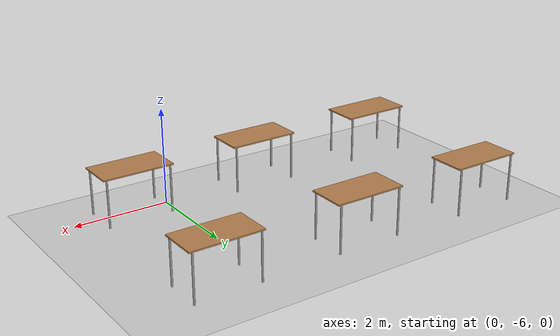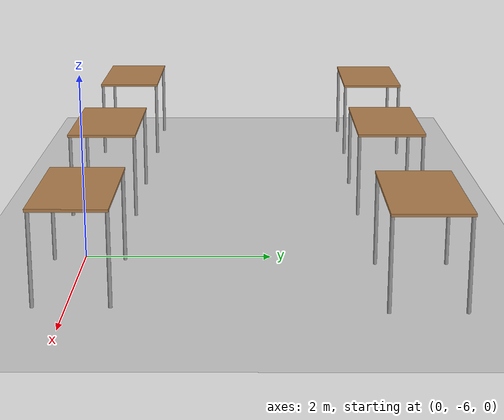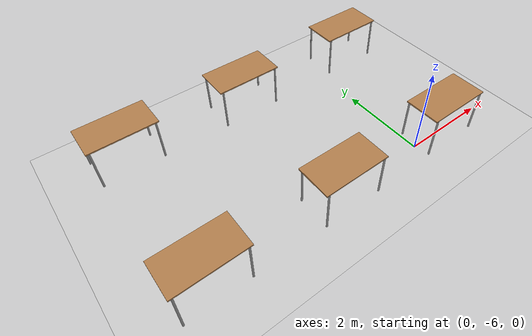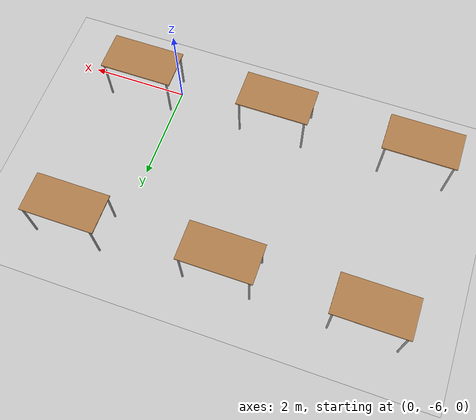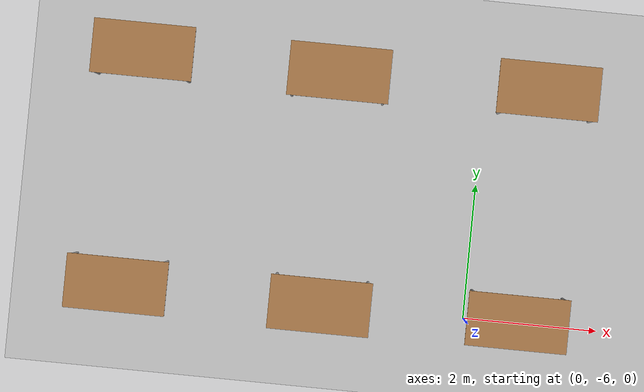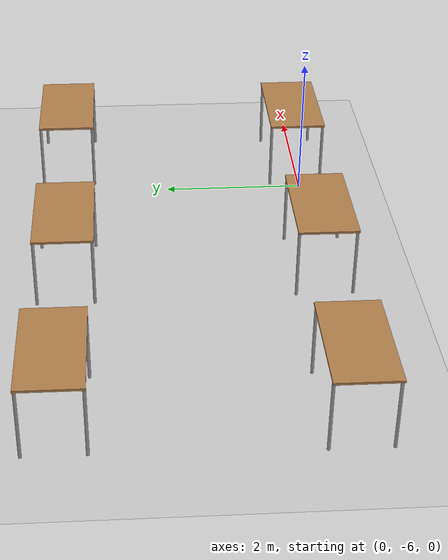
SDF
<sdf version="1.7">
 <world name="default">
  <model name="ground_plane">
   <static>1</static>
   <link name="link">
    <collision name="collision">
     <geometry><plane><normal>0 0 1</normal><size>100 100</size></plane></geometry>
     <surface>
      <contact><collide_bitmask>65535</collide_bitmask></contact>
      <friction><ode><mu>100</mu><mu2>50</mu2></ode></friction>
     </surface>
    </collision>
    <visual name="visual">
     <cast_shadows>0</cast_shadows>
     <geometry><plane><normal>0 0 1</normal><size>100 100</size></plane></geometry>
     <material>
      <script><uri>file://media/materials/scripts/gazebo.material</uri><name>Gazebo/Grey</name></script>
     </material>
    </visual>
   </link>
  </model>
  <model name="table_0">
   <static>1</static>
   <link name="link">
    <collision name="surface">
     <pose>0 0 1 0 -0 0</pose>
     <geometry><box><size>1.5 0.8 0.03</size></box></geometry>
     <surface><friction><ode><mu>0.6</mu><mu2>0.6</mu2></ode></friction></surface>
    </collision>
    <visual name="visual1">
     <pose>0 0 1 0 -0 0</pose>
     <geometry><box><size>1.5 0.8 0.03</size></box></geometry>
     <material>
      <script><uri>file://media/materials/scripts/gazebo.material</uri><name>Gazebo/Wood</name></script>
     </material>
    </visual>
    <collision name="front_left_leg">
     <pose>0.68 0.38 0.5 0 -0 0</pose>
     <geometry><cylinder><radius>0.02</radius><length>1</length></cylinder></geometry>
    </collision>
    <visual name="front_left_leg">
     <pose>0.68 0.38 0.5 0 -0 0</pose>
     <geometry><cylinder><radius>0.02</radius><length>1</length></cylinder></geometry>
     <material>
      <script><uri>file://media/materials/scripts/gazebo.material</uri><name>Gazebo/Grey</name></script>
     </material>
    </visual>
    <collision name="front_right_leg">
     <pose>0.68 -0.38 0.5 0 -0 0</pose>
     <geometry><cylinder><radius>0.02</radius><length>1</length></cylinder></geometry>
    </collision>
    <visual name="front_right_leg">
     <pose>0.68 -0.38 0.5 0 -0 0</pose>
     <geometry><cylinder><radius>0.02</radius><length>1</length></cylinder></geometry>
     <material>
      <script><uri>file://media/materials/scripts/gazebo.material</uri><name>Gazebo/Grey</name></script>
     </material>
    </visual>
    <collision name="back_right_leg">
     <pose>-0.68 -0.38 0.5 0 -0 0</pose>
     <geometry><cylinder><radius>0.02</radius><length>1</length></cylinder></geometry>
    </collision>
    <visual name="back_right_leg">
     <pose>-0.68 -0.38 0.5 0 -0 0</pose>
     <geometry><cylinder><radius>0.02</radius><length>1</length></cylinder></geometry>
     <material>
      <script><uri>file://media/materials/scripts/gazebo.material</uri><name>Gazebo/Grey</name></script>
     </material>
    </visual>
    <collision name="back_left_leg">
     <pose>-0.68 0.38 0.5 0 -0 0</pose>
     <geometry><cylinder><radius>0.02</radius><length>1</length></cylinder></geometry>
    </collision>
    <visual name="back_left_leg">
     <pose>-0.68 0.38 0.5 0 -0 0</pose>
     <geometry><cylinder><radius>0.02</radius><length>1</length></cylinder></geometry>
     <material>
      <script><uri>file://media/materials/scripts/gazebo.material</uri><name>Gazebo/Grey</name></script>
     </material>
    </visual>
   </link>
   <pose>0.898618 -2.51006 0 0 -0 0</pose>
  </model>
  <model name="table_3">
   <static>1</static>
   <link name="link">
    <collision name="surface">
     <pose>0 0 1 0 -0 0</pose>
     <geometry><box><size>1.5 0.8 0.03</size></box></geometry>
     <surface><friction><ode><mu>0.6</mu><mu2>0.6</mu2></ode></friction></surface>
    </collision>
    <visual name="visual1">
     <pose>0 0 1 0 -0 0</pose>
     <geometry><box><size>1.5 0.8 0.03</size></box></geometry>
     <material>
      <script><uri>file://media/materials/scripts/gazebo.material</uri><name>Gazebo/Wood</name></script>
     </material>
    </visual>
    <collision name="front_left_leg">
     <pose>0.68 0.38 0.5 0 -0 0</pose>
     <geometry><cylinder><radius>0.02</radius><length>1</length></cylinder></geometry>
    </collision>
    <visual name="front_left_leg">
     <pose>0.68 0.38 0.5 0 -0 0</pose>
     <geometry><cylinder><radius>0.02</radius><length>1</length></cylinder></geometry>
     <material>
      <script><uri>file://media/materials/scripts/gazebo.material</uri><name>Gazebo/Grey</name></script>
     </material>
    </visual>
    <collision name="front_right_leg">
     <pose>0.68 -0.38 0.5 0 -0 0</pose>
     <geometry><cylinder><radius>0.02</radius><length>1</length></cylinder></geometry>
    </collision>
    <visual name="front_right_leg">
     <pose>0.68 -0.38 0.5 0 -0 0</pose>
     <geometry><cylinder><radius>0.02</radius><length>1</length></cylinder></geometry>
     <material>
      <script><uri>file://media/materials/scripts/gazebo.material</uri><name>Gazebo/Grey</name></script>
     </material>
    </visual>
    <collision name="back_right_leg">
     <pose>-0.68 -0.38 0.5 0 -0 0</pose>
     <geometry><cylinder><radius>0.02</radius><length>1</length></cylinder></geometry>
    </collision>
    <visual name="back_right_leg">
     <pose>-0.68 -0.38 0.5 0 -0 0</pose>
     <geometry><cylinder><radius>0.02</radius><length>1</length></cylinder></geometry>
     <material>
      <script><uri>file://media/materials/scripts/gazebo.material</uri><name>Gazebo/Grey</name></script>
     </material>
    </visual>
    <collision name="back_left_leg">
     <pose>-0.68 0.38 0.5 0 -0 0</pose>
     <geometry><cylinder><radius>0.02</radius><length>1</length></cylinder></geometry>
    </collision>
    <visual name="back_left_leg">
     <pose>-0.68 0.38 0.5 0 -0 0</pose>
     <geometry><cylinder><radius>0.02</radius><length>1</length></cylinder></geometry>
     <material>
      <script><uri>file://media/materials/scripts/gazebo.material</uri><name>Gazebo/Grey</name></script>
     </material>
    </visual>
   </link>
   <pose>-2.18755 -2.54718 0 0 -0 0</pose>
  </model>
  <model name="table_4">
   <static>1</static>
   <link name="link">
    <collision name="surface">
     <pose>0 0 1 0 -0 0</pose>
     <geometry><box><size>1.5 0.8 0.03</size></box></geometry>
     <surface><friction><ode><mu>0.6</mu><mu2>0.6</mu2></ode></friction></surface>
    </collision>
    <visual name="visual1">
     <pose>0 0 1 0 -0 0</pose>
     <geometry><box><size>1.5 0.8 0.03</size></box></geometry>
     <material>
      <script><uri>file://media/materials/scripts/gazebo.material</uri><name>Gazebo/Wood</name></script>
     </material>
    </visual>
    <collision name="front_left_leg">
     <pose>0.68 0.38 0.5 0 -0 0</pose>
     <geometry><cylinder><radius>0.02</radius><length>1</length></cylinder></geometry>
    </collision>
    <visual name="front_left_leg">
     <pose>0.68 0.38 0.5 0 -0 0</pose>
     <geometry><cylinder><radius>0.02</radius><length>1</length></cylinder></geometry>
     <material>
      <script><uri>file://media/materials/scripts/gazebo.material</uri><name>Gazebo/Grey</name></script>
     </material>
    </visual>
    <collision name="front_right_leg">
     <pose>0.68 -0.38 0.5 0 -0 0</pose>
     <geometry><cylinder><radius>0.02</radius><length>1</length></cylinder></geometry>
    </collision>
    <visual name="front_right_leg">
     <pose>0.68 -0.38 0.5 0 -0 0</pose>
     <geometry><cylinder><radius>0.02</radius><length>1</length></cylinder></geometry>
     <material>
      <script><uri>file://media/materials/scripts/gazebo.material</uri><name>Gazebo/Grey</name></script>
     </material>
    </visual>
    <collision name="back_right_leg">
     <pose>-0.68 -0.38 0.5 0 -0 0</pose>
     <geometry><cylinder><radius>0.02</radius><length>1</length></cylinder></geometry>
    </collision>
    <visual name="back_right_leg">
     <pose>-0.68 -0.38 0.5 0 -0 0</pose>
     <geometry><cylinder><radius>0.02</radius><length>1</length></cylinder></geometry>
     <material>
      <script><uri>file://media/materials/scripts/gazebo.material</uri><name>Gazebo/Grey</name></script>
     </material>
    </visual>
    <collision name="back_left_leg">
     <pose>-0.68 0.38 0.5 0 -0 0</pose>
     <geometry><cylinder><radius>0.02</radius><length>1</length></cylinder></geometry>
    </collision>
    <visual name="back_left_leg">
     <pose>-0.68 0.38 0.5 0 -0 0</pose>
     <geometry><cylinder><radius>0.02</radius><length>1</length></cylinder></geometry>
     <material>
      <script><uri>file://media/materials/scripts/gazebo.material</uri><name>Gazebo/Grey</name></script>
     </material>
    </visual>
   </link>
   <pose>-5.09252 -2.49688 0 0 -0 0</pose>
  </model>
  <model name="table_8">
   <static>1</static>
   <link name="link">
    <collision name="surface">
     <pose>0 0 1 0 -0 0</pose>
     <geometry><box><size>1.5 0.8 0.03</size></box></geometry>
     <surface><friction><ode><mu>0.6</mu><mu2>0.6</mu2></ode></friction></surface>
    </collision>
    <visual name="visual1">
     <pose>0 0 1 0 -0 0</pose>
     <geometry><box><size>1.5 0.8 0.03</size></box></geometry>
     <material>
      <script><uri>file://media/materials/scripts/gazebo.material</uri><name>Gazebo/Wood</name></script>
     </material>
    </visual>
    <collision name="front_left_leg">
     <pose>0.68 0.38 0.5 0 -0 0</pose>
     <geometry><cylinder><radius>0.02</radius><length>1</length></cylinder></geometry>
    </collision>
    <visual name="front_left_leg">
     <pose>0.68 0.38 0.5 0 -0 0</pose>
     <geometry><cylinder><radius>0.02</radius><length>1</length></cylinder></geometry>
     <material>
      <script><uri>file://media/materials/scripts/gazebo.material</uri><name>Gazebo/Grey</name></script>
     </material>
    </visual>
    <collision name="front_right_leg">
     <pose>0.68 -0.38 0.5 0 -0 0</pose>
     <geometry><cylinder><radius>0.02</radius><length>1</length></cylinder></geometry>
    </collision>
    <visual name="front_right_leg">
     <pose>0.68 -0.38 0.5 0 -0 0</pose>
     <geometry><cylinder><radius>0.02</radius><length>1</length></cylinder></geometry>
     <material>
      <script><uri>file://media/materials/scripts/gazebo.material</uri><name>Gazebo/Grey</name></script>
     </material>
    </visual>
    <collision name="back_right_leg">
     <pose>-0.68 -0.38 0.5 0 -0 0</pose>
     <geometry><cylinder><radius>0.02</radius><length>1</length></cylinder></geometry>
    </collision>
    <visual name="back_right_leg">
     <pose>-0.68 -0.38 0.5 0 -0 0</pose>
     <geometry><cylinder><radius>0.02</radius><length>1</length></cylinder></geometry>
     <material>
      <script><uri>file://media/materials/scripts/gazebo.material</uri><name>Gazebo/Grey</name></script>
     </material>
    </visual>
    <collision name="back_left_leg">
     <pose>-0.68 0.38 0.5 0 -0 0</pose>
     <geometry><cylinder><radius>0.02</radius><length>1</length></cylinder></geometry>
    </collision>
    <visual name="back_left_leg">
     <pose>-0.68 0.38 0.5 0 -0 0</pose>
     <geometry><cylinder><radius>0.02</radius><length>1</length></cylinder></geometry>
     <material>
      <script><uri>file://media/materials/scripts/gazebo.material</uri><name>Gazebo/Grey</name></script>
     </material>
    </visual>
   </link>
   <pose>0.770315 -5.94794 0 0 -0 0</pose>
  </model>
  <model name="table_9">
   <static>1</static>
   <link name="link">
    <collision name="surface">
     <pose>0 0 1 0 -0 0</pose>
     <geometry><box><size>1.5 0.8 0.03</size></box></geometry>
     <surface><friction><ode><mu>0.6</mu><mu2>0.6</mu2></ode></friction></surface>
    </collision>
    <visual name="visual1">
     <pose>0 0 1 0 -0 0</pose>
     <geometry><box><size>1.5 0.8 0.03</size></box></geometry>
     <material>
      <script><uri>file://media/materials/scripts/gazebo.material</uri><name>Gazebo/Wood</name></script>
     </material>
    </visual>
    <collision name="front_left_leg">
     <pose>0.68 0.38 0.5 0 -0 0</pose>
     <geometry><cylinder><radius>0.02</radius><length>1</length></cylinder></geometry>
    </collision>
    <visual name="front_left_leg">
     <pose>0.68 0.38 0.5 0 -0 0</pose>
     <geometry><cylinder><radius>0.02</radius><length>1</length></cylinder></geometry>
     <material>
      <script><uri>file://media/materials/scripts/gazebo.material</uri><name>Gazebo/Grey</name></script>
     </material>
    </visual>
    <collision name="front_right_leg">
     <pose>0.68 -0.38 0.5 0 -0 0</pose>
     <geometry><cylinder><radius>0.02</radius><length>1</length></cylinder></geometry>
    </collision>
    <visual name="front_right_leg">
     <pose>0.68 -0.38 0.5 0 -0 0</pose>
     <geometry><cylinder><radius>0.02</radius><length>1</length></cylinder></geometry>
     <material>
      <script><uri>file://media/materials/scripts/gazebo.material</uri><name>Gazebo/Grey</name></script>
     </material>
    </visual>
    <collision name="back_right_leg">
     <pose>-0.68 -0.38 0.5 0 -0 0</pose>
     <geometry><cylinder><radius>0.02</radius><length>1</length></cylinder></geometry>
    </collision>
    <visual name="back_right_leg">
     <pose>-0.68 -0.38 0.5 0 -0 0</pose>
     <geometry><cylinder><radius>0.02</radius><length>1</length></cylinder></geometry>
     <material>
      <script><uri>file://media/materials/scripts/gazebo.material</uri><name>Gazebo/Grey</name></script>
     </material>
    </visual>
    <collision name="back_left_leg">
     <pose>-0.68 0.38 0.5 0 -0 0</pose>
     <geometry><cylinder><radius>0.02</radius><length>1</length></cylinder></geometry>
    </collision>
    <visual name="back_left_leg">
     <pose>-0.68 0.38 0.5 0 -0 0</pose>
     <geometry><cylinder><radius>0.02</radius><length>1</length></cylinder></geometry>
     <material>
      <script><uri>file://media/materials/scripts/gazebo.material</uri><name>Gazebo/Grey</name></script>
     </material>
    </visual>
   </link>
   <pose>-2.14673 -5.98262 0 0 -0 0</pose>
  </model>
  <model name="table_10">
   <static>1</static>
   <link name="link">
    <collision name="surface">
     <pose>0 0 1 0 -0 0</pose>
     <geometry><box><size>1.5 0.8 0.03</size></box></geometry>
     <surface><friction><ode><mu>0.6</mu><mu2>0.6</mu2></ode></friction></surface>
    </collision>
    <visual name="visual1">
     <pose>0 0 1 0 -0 0</pose>
     <geometry><box><size>1.5 0.8 0.03</size></box></geometry>
     <material>
      <script><uri>file://media/materials/scripts/gazebo.material</uri><name>Gazebo/Wood</name></script>
     </material>
    </visual>
    <collision name="front_left_leg">
     <pose>0.68 0.38 0.5 0 -0 0</pose>
     <geometry><cylinder><radius>0.02</radius><length>1</length></cylinder></geometry>
    </collision>
    <visual name="front_left_leg">
     <pose>0.68 0.38 0.5 0 -0 0</pose>
     <geometry><cylinder><radius>0.02</radius><length>1</length></cylinder></geometry>
     <material>
      <script><uri>file://media/materials/scripts/gazebo.material</uri><name>Gazebo/Grey</name></script>
     </material>
    </visual>
    <collision name="front_right_leg">
     <pose>0.68 -0.38 0.5 0 -0 0</pose>
     <geometry><cylinder><radius>0.02</radius><length>1</length></cylinder></geometry>
    </collision>
    <visual name="front_right_leg">
     <pose>0.68 -0.38 0.5 0 -0 0</pose>
     <geometry><cylinder><radius>0.02</radius><length>1</length></cylinder></geometry>
     <material>
      <script><uri>file://media/materials/scripts/gazebo.material</uri><name>Gazebo/Grey</name></script>
     </material>
    </visual>
    <collision name="back_right_leg">
     <pose>-0.68 -0.38 0.5 0 -0 0</pose>
     <geometry><cylinder><radius>0.02</radius><length>1</length></cylinder></geometry>
    </collision>
    <visual name="back_right_leg">
     <pose>-0.68 -0.38 0.5 0 -0 0</pose>
     <geometry><cylinder><radius>0.02</radius><length>1</length></cylinder></geometry>
     <material>
      <script><uri>file://media/materials/scripts/gazebo.material</uri><name>Gazebo/Grey</name></script>
     </material>
    </visual>
    <collision name="back_left_leg">
     <pose>-0.68 0.38 0.5 0 -0 0</pose>
     <geometry><cylinder><radius>0.02</radius><length>1</length></cylinder></geometry>
    </collision>
    <visual name="back_left_leg">
     <pose>-0.68 0.38 0.5 0 -0 0</pose>
     <geometry><cylinder><radius>0.02</radius><length>1</length></cylinder></geometry>
     <material>
      <script><uri>file://media/materials/scripts/gazebo.material</uri><name>Gazebo/Grey</name></script>
     </material>
    </visual>
   </link>
   <pose>-5.15368 -5.96482 0 0 -0 0</pose>
  </model>
 </world>
</sdf>
